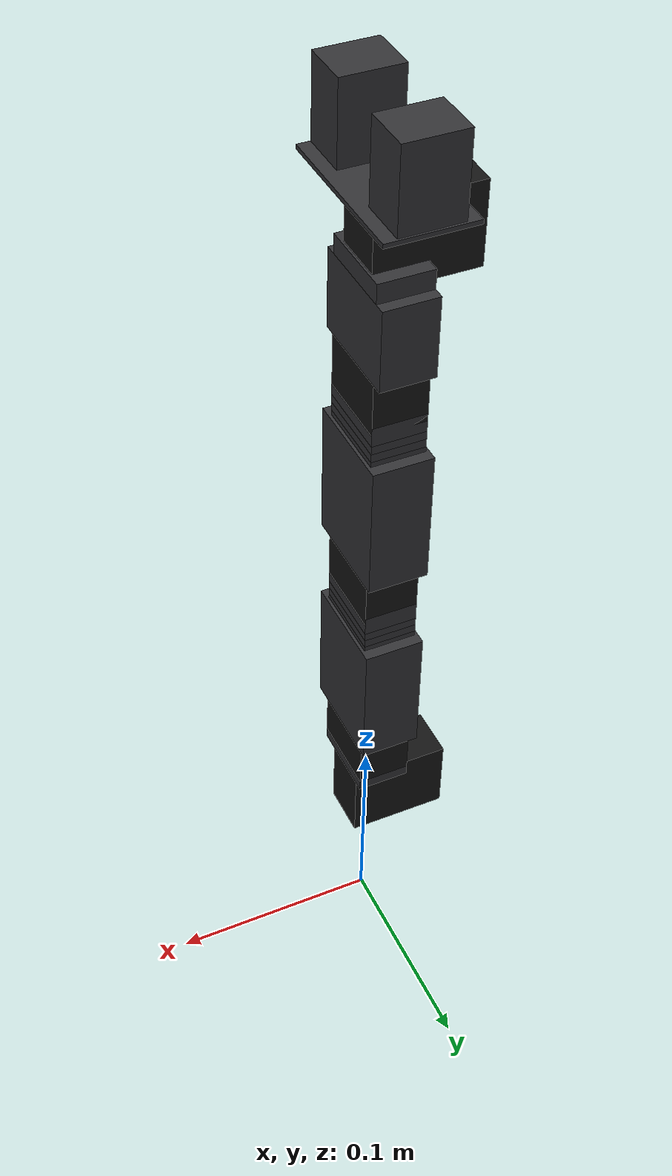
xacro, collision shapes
<?xml version="1.0"?>
<!-- Describe URDF for PhantomX Pincher Arm -->
<robot name="turtlebot_arm" xmlns:xacro="http://ros.org/wiki/xacro">

    <!-- We can configure joints velocity limit and lower/upper limits
          to allow access to different operational areas, e.g. left handed vs. right handed robot -->
    <xacro:property name="joints_vlimit" value="1.571"/>
    <xacro:property name="pan_llimit" value="-2.617"/>
    <xacro:property name="pan_ulimit" value="2.617"/>
    <xacro:property name="shoulder_llimit" value="-2.2"/>
    <xacro:property name="shoulder_ulimit" value="2.16"/>
    <xacro:property name="elbow_llimit" value="-2.42"/>
    <xacro:property name="elbow_ulimit" value="2.38"/>
    <xacro:property name="wrist_llimit" value="-1.72"/>
    <xacro:property name="wrist_ulimit" value="1.68"/>

    <!-- Included URDF Files -->

     <!-- Pincher arm is same as Turtlebot -->
    <xacro:include filename="$(find turtlebot_arm_description)/urdf_4gazebo/turtlebot_arm.xacro"/>

    <!-- As we don't have here a turtlebot base, add a world link as its location reference -->
    <link name="world"/>

<!-- copy start: Copied from https://github.com/corot/thorp/blob/master/thorp_description/urdf/thorp_gazebo.urdf.xacro -->

   <!-- Gazebo configuration for arm and cannon servos control -->
  <gazebo>
    <plugin name="gazebo_ros_control" filename="libgazebo_ros_control.so">
      <!-- namespace added because of the inmoov example (https://github.com/MatthewVerbryke/inmoov_ros) -->
      <robotNamespace>/turtlebot_arm</robotNamespace>
      <!-- from: https://groups.google.com/forum/#%21topic/moveit-users/zNRG50tHuuY -->
       <robotSimType>gazebo_ros_control/DefaultRobotHWSim</robotSimType>
    </plugin>
  </gazebo>

  <xacro:macro name="servo_transmission" params="name">
    <transmission name="${name}_trans">
      <type>transmission_interface/SimpleTransmission</type>
      <joint name="${name}_joint">
        <hardwareInterface>hardware_interface/PositionJointInterface</hardwareInterface>
      </joint>
      <actuator name="${name}_motor">
        <hardwareInterface>hardware_interface/PositionJointInterface</hardwareInterface>
        <mechanicalReduction>1</mechanicalReduction>
      </actuator>
    </transmission>
  </xacro:macro>

  <servo_transmission name="arm_shoulder_pan"/>
  <servo_transmission name="arm_shoulder_lift"/>
  <servo_transmission name="arm_elbow_flex"/>
  <servo_transmission name="arm_wrist_flex"/>
  <!-- copy end -->

    <!-- Turtlebot arm macro -->
    <turtlebot_arm parent="world" color="Gray" gripper_color="Gray"   pincher_gripper="true" turtlebot_gripper="false">
      <!-- Place the "floating" arm at the location according to the physical setup -->
      <origin xyz="0 0 0.083"/> <!-- height of the PhantomX Pincher base = ca. 58mm + height of table plane = ca. 25mm -->
    </turtlebot_arm>
</robot>

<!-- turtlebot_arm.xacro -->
<!-- Arm description for Turtlebot Arm and PhantomX Pincher arm -->
<robot xmlns:xacro="http://ros.org/wiki/xacro">
  <xacro:include filename="$(find turtlebot_arm_description)/urdf_4gazebo/arm_hardware.xacro"/>

  <material name="White">
    <color rgba="0.87 0.90 0.87 1.0"/>
  </material>
  <material name="Black">
    <color rgba="0.08 0.08 0.08 1.0"/>
  </material>
  <material name="Gray">
    <color rgba="0.2 0.2 0.21 1.0"/>
  </material>
  <material name="Green">
    <color rgba="0.22 0.32 0.14 1.0"/>
  </material>

  <xacro:macro name="turtlebot_arm" params="parent color pincher_gripper turtlebot_gripper gripper_color *origin">
    <link name="arm_base_link"/>
    <joint name="arm_base_joint" type="fixed">
      <xacro:insert_block name="origin"/>
      <parent link="${parent}"/>
      <child link="arm_base_link"/>
    </joint>

    <!-- fake gripper_link joint gives us a free servo!
         this makes us 5DOF and saves you $44.90
         that's a lot of coin! -->
    <link name="gripper_link"/>
    <joint name="gripper_link_joint" type="revolute">
      <origin xyz="0 0 0.112" rpy="0 -1.57 0"/>
      <parent link="arm_wrist_flex_link"/>
      <child link="gripper_link"/>
      <limit effort="30" velocity="1" lower="-3.14" upper="3.14"/>
      <axis xyz="1 0 0"/>
    </joint>

    <!-- shoulder pan joint -->
    <dynamixel_AX12_fixed parent="arm_base_link" name="arm_shoulder_pan_servo">
      <origin xyz="0 0 0" rpy="${M_PI/2} 0 ${M_PI/2}"/>
    </dynamixel_AX12_fixed>
    <bioloid_F3_revolute parent="arm_shoulder_pan_servo_link" name="arm_shoulder_pan" color="${color}"
                         vlimit="${joints_vlimit}" llimit="${pan_llimit}" ulimit="${pan_ulimit}">
      <origin xyz="0 ${AX12_WIDTH/2} 0" rpy="${-M_PI/2} ${M_PI/2} ${M_PI}"/>
    </bioloid_F3_revolute>

    <!-- shoulder lift joint -->
    <dynamixel_AX12_fixed parent="arm_shoulder_pan_link" name="arm_shoulder_lift_servo">
      <origin xyz="0 0 ${-AX12_HEIGHT-F10_HEIGHT+0.001}" rpy="0 ${M_PI} 0"/>
    </dynamixel_AX12_fixed>
    <bioloid_F4_revolute parent="arm_shoulder_lift_servo_link" name="arm_shoulder_lift" color="${color}"
                         vlimit="${joints_vlimit}" llimit="${shoulder_llimit}" ulimit="${shoulder_ulimit}">
      <origin xyz="0 0 0" rpy="0 0 0"/>
    </bioloid_F4_revolute>
    <bioloid_F10_fixed parent="arm_shoulder_lift_link" name="arm_shoulder_F10_0" color="${color}">
      <origin xyz="0 0 ${F4_HEIGHT+F10_HEIGHT/2}" rpy="0 0 0"/>
    </bioloid_F10_fixed>
    <bioloid_F10_fixed parent="arm_shoulder_F10_0_link" name="arm_shoulder_F10_1" color="${color}">
      <origin xyz="0 0 ${F10_HEIGHT}" rpy="0 0 0"/>
    </bioloid_F10_fixed>
    <bioloid_F10_fixed parent="arm_shoulder_F10_1_link" name="arm_shoulder_F10_2" color="${color}">
      <origin xyz="0 0 ${F10_HEIGHT}" rpy="0 0 0"/>
    </bioloid_F10_fixed>
    <bioloid_F3_fixed parent="arm_shoulder_F10_2_link" name="arm_shoulder_F3_0" color="${color}">
      <origin xyz="0 0 ${F10_HEIGHT/2}" rpy="0 ${M_PI} 0"/>
    </bioloid_F3_fixed>

    <!-- elbow joint -->
    <dynamixel_AX12_fixed parent="arm_shoulder_F3_0_link" name="arm_elbow_flex_servo">
      <origin xyz="0 0 ${-AX12_HEIGHT-F10_HEIGHT+0.001}" rpy="0 ${M_PI} 0"/>
    </dynamixel_AX12_fixed>
    <bioloid_F4_revolute parent="arm_elbow_flex_servo_link" name="arm_elbow_flex" color="${color}"
                         vlimit="${joints_vlimit}" llimit="${elbow_llimit}" ulimit="${elbow_ulimit}">
      <origin xyz="0 0 0" rpy="0 0 0"/>
    </bioloid_F4_revolute>
    <bioloid_F10_fixed parent="arm_elbow_flex_link" name="arm_elbow_F10_0" color="${color}">
      <origin xyz="0 0 ${F4_HEIGHT+F10_HEIGHT/2}" rpy="0 0 0"/>
    </bioloid_F10_fixed>
    <bioloid_F10_fixed parent="arm_elbow_F10_0_link" name="arm_elbow_F10_1" color="${color}">
      <origin xyz="0 0 ${F10_HEIGHT}" rpy="0 0 0"/>
    </bioloid_F10_fixed>
    <bioloid_F10_fixed parent="arm_elbow_F10_1_link" name="arm_elbow_F10_2" color="${color}">
      <origin xyz="0 0 ${F10_HEIGHT}" rpy="0 0 0"/>
    </bioloid_F10_fixed>
    <bioloid_F3_fixed parent="arm_elbow_F10_2_link" name="arm_elbow_F3_0" color="${color}">
      <origin xyz="0 0 ${F10_HEIGHT/2}" rpy="0 ${M_PI} 0"/>
    </bioloid_F3_fixed>

    <!-- wrist joint -->
    <dynamixel_AX12_fixed parent="arm_elbow_F3_0_link" name="arm_wrist_flex_servo">
      <origin xyz="0 0 ${-AX12_HEIGHT-F10_HEIGHT+0.001}" rpy="0 ${M_PI} 0"/>
    </dynamixel_AX12_fixed>
    <bioloid_F2_revolute parent="arm_wrist_flex_servo_link" name="arm_wrist_flex" color="${color}"
                         vlimit="${joints_vlimit}" llimit="${wrist_llimit}" ulimit="${wrist_ulimit}">
      <origin xyz="0 0 0" rpy="0 0 0"/>
    </bioloid_F2_revolute>

  <!-- gripper - Load either Turtlebot gripper or Pincher Gripper -->
  <xacro:if value="${pincher_gripper}">
    <xacro:include filename="$(find turtlebot_arm_description)/urdf_4gazebo/pincher_gripper.xacro"/>
  </xacro:if>
  <xacro:if value="${turtlebot_gripper}">
    <xacro:include filename="$(find turtlebot_arm_description)/urdf_4gazebo/turtlebot_gripper.xacro"/>
  </xacro:if>

  </xacro:macro>

</robot>

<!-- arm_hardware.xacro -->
<!-- Basic URDF components for Turtlebot Arm and PhantomX Pincher Arm-->
<robot xmlns:xacro="http://ros.org/wiki/xacro">
  <xacro:property name="M_PI" value="3.14159"/>
  <xacro:property name="M_SCALE" value="0.001"/>
  <xacro:property name="F10_HEIGHT" value="0.004"/>
  <xacro:property name="F4_HEIGHT" value="0.0525"/>
  <xacro:property name="F3_HEIGHT" value="0.009"/>
  <xacro:property name="AX12_HEIGHT" value="0.0385"/>
  <xacro:property name="AX12_WIDTH" value="0.038"/>
  <xacro:property name="AX12_LENGTH" value="0.050"/>
  <xacro:property name="F2_HEIGHT" value="0.0265"/>

  <!-- Calculates the inertial properties of a bounding box. From
       https://en.wikipedia.org/wiki/List_of_moments_of_inertia#List_of_3D_inertia_tensors-->
  <xacro:macro name="box_inertia" params="length width height mass">
    <inertial>
      <mass value="${mass}"/>
      <origin xyz="0 0 0"/>
      <inertia ixx="${mass/12*(height**2+length**2)}" ixy="0" ixz = "0"
               iyy="${mass/12*(width**2+length**2)}" iyz="0"
               izz="${mass/12*(width**2+height**2)}"/>
    </inertial>
  </xacro:macro>

  <xacro:macro name="arm_mount" params="parent name color *origin">
    <joint name="${name}_joint" type="fixed">
      <xacro:insert_block name="origin"/>
      <parent link="${parent}"/>
      <child link="${name}_link"/>
    </joint>

    <link name="${name}_link">
      <xacro:box_inertia length="0.074" width="0.074" height="0.004" mass="0.018"/>

      <visual>
        <origin xyz="-0.028 -0.0493 0.014" rpy="0.0 0.0 -${M_PI/2}"/>
        <geometry>
          <mesh filename="package://turtlebot_arm_description/meshes/mount.stl" scale="${M_SCALE} ${M_SCALE} ${M_SCALE}"/>
        </geometry>
        <material name="${color}"/>
      </visual>

      <collision>
        <origin xyz="-0.01 0.0 0.0165" rpy="0.0 0.0 0.0"/>
        <geometry>
          <box size="0.074 0.074 0.004"/>
        </geometry>
      </collision>
    </link>

    <gazebo reference="${name}_link">
      <material>Gazebo/${color}</material>
      <selfCollide>true</selfCollide>
      <gravity>true</gravity>
    </gazebo>
  </xacro:macro>

  <xacro:macro name="finger_fixed" params="parent name color *origin">
    <joint name="${name}_joint" type="fixed">
      <xacro:insert_block name="origin"/>
      <parent link="${parent}"/>
      <child link="${name}_link"/>
    </joint>

    <link name="${name}_link">
      <xacro:box_inertia length="0.0783" width="0.03801" height="0.0193" mass="0.015"/>

      <visual>
        <origin xyz=" 0 0 0 " rpy="0 0 0"/>
        <geometry>
          <mesh filename="package://turtlebot_arm_description/meshes/turtlebot_finger.stl" scale="${M_SCALE} ${M_SCALE} ${M_SCALE}"/>
        </geometry>
        <material name="${color}"/>
      </visual>

      <collision>
        <origin xyz="0.02645 0.0 -0.00655" rpy="0 0 0"/>
        <geometry>
          <box size="0.0783 0.03801 0.0193"/>
        </geometry>
      </collision>
    </link>

    <gazebo reference="${name}_link">
      <material>Gazebo/${color}</material>
      <selfCollide>true</selfCollide>
      <gravity>true</gravity>
    </gazebo>
  </xacro:macro>

  <xacro:macro name="dynamixel_AX12_fixed" params="parent name *origin">
    <joint name="${name}_joint" type="fixed">
      <xacro:insert_block name="origin"/>
      <parent link="${parent}"/>
      <child link="${name}_link"/>
    </joint>

    <link name="${name}_link">
      <inertial>
        <mass value="0.055"/>
        <origin xyz="0 0 0"/>
        <inertia ixx="0.000017012" ixy="0.0" ixz="0.0"
                 iyy="0.000013258" iyz="0.0"
                 izz="0.000009483"/>
      </inertial>

      <visual>
        <origin xyz=" 0 0 0 " rpy="0 0 0"/>
        <geometry>
          <mesh filename="package://turtlebot_arm_description/meshes/ax12_box.stl" scale="${M_SCALE} ${M_SCALE} ${M_SCALE}"/>
        </geometry>
        <material name="Black"/>
      </visual>

      <collision>
        <origin xyz="0.0 0.0 -0.01241" rpy="0 0 0"/>
        <geometry>
          <box size="0.025 0.038 0.04762"/>
        </geometry>
      </collision>
    </link>

    <gazebo reference="${name}_link">
      <material>Gazebo/Black</material>
      <selfCollide>true</selfCollide>
      <gravity>true</gravity>
    </gazebo>
  </xacro:macro>

  <xacro:macro name="bioloid_F10_fixed" params="parent name color *origin">
    <joint name="${name}_joint" type="fixed">
      <xacro:insert_block name="origin"/>
      <parent link="${parent}"/>
      <child link="${name}_link"/>
    </joint>

    <link name="${name}_link">
      <xacro:box_inertia length="0.025" width="0.038" height="0.004" mass="0.004"/>

      <visual>
        <origin xyz=" 0 0 0 " rpy="0 0 0"/>
        <geometry>
          <mesh filename="package://turtlebot_arm_description/meshes/F10.stl" scale="${M_SCALE} ${M_SCALE} ${M_SCALE}"/>
        </geometry>
        <material name="${color}"/>
      </visual>

      <collision>
        <origin xyz="0.0 0.0 0.0" rpy="0 0 0"/>
        <geometry>
          <box size="0.025 0.038 0.004"/>
        </geometry>
      </collision>
    </link>

    <gazebo reference="${name}_link">
      <material>Gazebo/${color}</material>
      <selfCollide>true</selfCollide>
      <gravity>true</gravity>
    </gazebo>
  </xacro:macro>

  <xacro:macro name="bioloid_F3_fixed" params="parent name color *origin">
    <joint name="${name}_joint" type="fixed">
      <xacro:insert_block name="origin"/>
      <parent link="${parent}"/>
      <child link="${name}_link"/>
    </joint>

    <link name="${name}_link">
      <xacro:box_inertia length="0.025" width="0.038" height="0.009" mass="0.005"/>

      <visual>
        <origin xyz=" 0 0 0 " rpy="0 0 0"/>
        <geometry>
          <mesh filename="package://turtlebot_arm_description/meshes/F3.stl" scale="${M_SCALE} ${M_SCALE} ${M_SCALE}"/>
        </geometry>
        <material name="${color}"/>
      </visual>

      <collision>
        <origin xyz="0.0 0.0 -0.0045" rpy="0 0 0"/>
        <geometry>
          <box size="0.025 0.038 0.009"/>
        </geometry>
      </collision>
    </link>

    <gazebo reference="${name}_link">
      <material>Gazebo/${color}</material>
      <selfCollide>true</selfCollide>
      <gravity>true</gravity>
    </gazebo>
  </xacro:macro>

  <xacro:macro name="bioloid_F3_revolute" params="parent name color llimit ulimit vlimit *origin">
    <joint name="${name}_joint" type="revolute">
      <xacro:insert_block name="origin"/>
      <axis xyz="0 0 -1"/>
      <limit effort="30" velocity="${vlimit}" lower="${llimit}" upper="${ulimit}"/>
      <dynamics friction="0.13"/>
      <parent link="${parent}"/>
      <child link="${name}_link"/>
    </joint>

    <link name="${name}_link">
      <xacro:box_inertia length="0.025" width="0.038" height="0.009" mass="0.008"/>

      <visual>
        <origin xyz=" 0 0 0 " rpy="0 0 0"/>
        <geometry>
          <mesh filename="package://turtlebot_arm_description/meshes/F3.stl" scale="${M_SCALE} ${M_SCALE} ${M_SCALE}"/>
        </geometry>
        <material name="${color}"/>
      </visual>

      <collision>
        <origin xyz="0.0 0.0 -0.0045" rpy="0 0 0"/>
        <geometry>
          <box size="0.025 0.038 0.009"/>
        </geometry>
      </collision>
    </link>

    <gazebo reference="${name}_link">
      <material>Gazebo/${color}</material>
      <selfCollide>true</selfCollide>
      <gravity>true</gravity>
    </gazebo>
  </xacro:macro>

  <xacro:macro name="bioloid_F2_revolute" params="parent name color llimit ulimit vlimit *origin">
    <joint name="${name}_joint" type="revolute">
      <xacro:insert_block name="origin"/>
      <axis xyz="0 1 0"/>
      <limit effort="30" velocity="${vlimit}" lower="${llimit}" upper="${ulimit}"/>
      <dynamics friction="0.13"/>
      <parent link="${parent}"/>
      <child link="${name}_link"/>
    </joint>

    <link name="${name}_link">
      <xacro:box_inertia length="0.025" width="0.0485" height="0.0375" mass="0.010"/>

      <visual>
        <origin xyz=" 0 0 0 " rpy="0 0 0"/>
        <geometry>
          <mesh filename="package://turtlebot_arm_description/meshes/F2.stl" scale="${M_SCALE} ${M_SCALE} ${M_SCALE}"/>
        </geometry>
        <material name="${color}"/>
      </visual>

      <collision>
        <origin xyz="0.0 0.0 0.00775" rpy="0 0 0"/>
        <geometry>
          <box size="0.025 0.0485 0.0375"/>
        </geometry>
      </collision>
    </link>

    <gazebo reference="${name}_link">
      <material>Gazebo/${color}</material>
      <selfCollide>true</selfCollide>
      <gravity>true</gravity>
    </gazebo>
  </xacro:macro>

  <xacro:macro name="bioloid_F4_revolute" params="parent name color llimit ulimit vlimit *origin">
    <joint name="${name}_joint" type="revolute">
      <xacro:insert_block name="origin"/>
      <axis xyz="0 1 0"/>
      <limit effort="30" velocity="${vlimit}" lower="${llimit}" upper="${ulimit}"/>
      <dynamics friction="0.13"/>
      <parent link="${parent}"/>
      <child link="${name}_link"/>
    </joint>

    <link name="${name}_link">
      <xacro:box_inertia length="0.028" width="0.0485" height="0.065" mass="0.016"/>

      <visual>
        <origin xyz=" 0 0 0 " rpy="0 0 0"/>
        <geometry>
          <mesh filename="package://turtlebot_arm_description/meshes/F4.stl" scale="${M_SCALE} ${M_SCALE} ${M_SCALE}"/>
        </geometry>
        <material name="${color}"/>
      </visual>

      <collision>
        <origin xyz="0.0 0.0 0.0215" rpy="0 0 0"/>
        <geometry>
          <box size="0.028 0.0485 0.065"/>
        </geometry>
      </collision>
    </link>

    <gazebo reference="${name}_link">
      <material>Gazebo/${color}</material>
      <selfCollide>true</selfCollide>
      <gravity>true</gravity>
    </gazebo>
  </xacro:macro>

  <xacro:macro name="gripper_finger_base" params="parent name color *origin">
    <joint name="${name}_joint" type="fixed">
      <xacro:insert_block name="origin"/>
      <parent link="${parent}"/>
      <child link="${name}_link"/>
    </joint>

    <link name="${name}_link">
      <xacro:box_inertia length="0.002" width="0.075" height="0.040" mass="0.00001"/>
      <visual>
         <origin xyz="0 0 0" rpy="0 0 0"/>
        <geometry>
           <box size="0.002 0.075 0.040"/>
        </geometry>
        <material name="${color}"/>
      </visual>

      <collision>
        <geometry>
          <box size="0.002 0.075 0.040"/>
        </geometry>
      </collision>
    </link >

    <gazebo reference="${name}_link">
      <material>Gazebo/${color}</material>
      <selfCollide>true</selfCollide>
      <gravity>true</gravity>
    </gazebo>

     <gazebo>
      <plugin name="p3d_base_controller" filename="libgazebo_ros_p3d.so">
        <alwaysOn>true</alwaysOn>
        <updateRate>5.0</updateRate>
        <bodyName>${name}_link</bodyName>
        <topicName>${name}_link_odom</topicName>
        <gaussianNoise>0.0</gaussianNoise>
        <frameName>world</frameName>
        <xyzOffsets>0 0 0</xyzOffsets>
        <rpyOffsets>0 0 0</rpyOffsets>
      </plugin>
    </gazebo>
  </xacro:macro>

    <xacro:macro name="pincher_gripper" params="name color *origin">
      <link name="${name}_link">
      <xacro:box_inertia length="0.036" width="0.028" height="0.004" mass="0.00001"/>
      <visual>
        <xacro:insert_block name="origin"/>
        <geometry>
          <mesh filename="package://turtlebot_arm_description/meshes/pincher_finger.stl" scale=".01 .01 .01"/>
        </geometry>
        <material name="${color}"/>
      </visual>
      <collision>
        <xacro:insert_block name="origin"/>
        <geometry>
          <box size="0.023 0.028 0.038"/>
        </geometry>
      </collision>
    </link>

    <gazebo reference="${name}_link">
      <material>Gazebo/${color}</material>
      <selfCollide>true</selfCollide>
      <gravity>true</gravity>
      <!-- contact sensor -->
      <sensor type="contact" name="${name}_link_contact_sensor">
        <update_rate>5.0</update_rate>
        <always_on>1</always_on>
        <contact>
          <collision>bumper_collision</collision>
          <topic>/${name}_link_contact</topic>
        </contact>
        <plugin name="gazebo_ros_bumper_controller" filename="libgazebo_ros_bumper.so">
          <alwaysOn>true</alwaysOn>
          <updateRate>5.0</updateRate>
          <bumperTopicName>/${name}_link_bumper</bumperTopicName>
          <frameName>world</frameName>
        </plugin>
      </sensor>
    </gazebo>

    <gazebo>
      <plugin name="p3d_base_controller" filename="libgazebo_ros_p3d.so">
        <alwaysOn>true</alwaysOn>
        <updateRate>5.0</updateRate>
        <bodyName>${name}_link</bodyName>
        <topicName>${name}_link_odom</topicName>
        <gaussianNoise>0.0</gaussianNoise>
        <frameName>world</frameName>
        <xyzOffsets>0 0 0</xyzOffsets>
        <rpyOffsets>0 0 0</rpyOffsets>
      </plugin>
    </gazebo>

  </xacro:macro>

</robot>

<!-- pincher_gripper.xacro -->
<!-- PhantomX Pincher Arm gripper URDF-->
<robot xmlns:xacro="http://ros.org/wiki/xacro">
  <xacro:property name="FINGER_HEIGHT" value="0.038"/>
    <bioloid_F3_fixed parent="arm_wrist_flex_link" name="arm_wrist_F3_0" color="${color}">
      <origin xyz="0 0 ${F2_HEIGHT}" rpy="0 ${M_PI} ${-M_PI}"/>
    </bioloid_F3_fixed>

    <!-- gripper joint -->
    <dynamixel_AX12_fixed parent="arm_wrist_F3_0_link" name="gripper_servo" >
      <origin xyz="0 0 ${-AX12_WIDTH/2}" rpy="${M_PI/2} ${M_PI} ${M_PI/2}"/>
    </dynamixel_AX12_fixed>

    <gripper_finger_base parent="gripper_servo_link" name="gripper_finger_base" color="${color}">
      <origin xyz="0 ${AX12_WIDTH/2} 0" rpy="${M_PI} 0 ${M_PI/2}"/>
    </gripper_finger_base>

     <!-- Master finger -->
    <!-- NOTE: The transmission for gripper_joint MUST specify a mechnaical reduction of two for
         the gripper seperation to be calculated correctly -->
    <joint name="gripper_joint" type="fixed">
      <origin xyz="${FINGER_HEIGHT/2} 0.015 0" rpy="0 0 0"/>
      <axis xyz="0 -1 0"/>
      <parent link="gripper_finger_base_link"/>
      <child link="gripper_active_link"/>
    </joint>

    <!-- macro defined in arm_hardware.xacro -->
    <pincher_gripper name="gripper_active" color="${color}" >
      <origin xyz="0 0.01 0" rpy="${M_PI/2} 0 ${M_PI/2}"/>
    </pincher_gripper>

    <!-- Slave finger -->
    <joint name="gripper2_joint" type="fixed">
      <origin xyz="${FINGER_HEIGHT/2} -0.0155 0" rpy="${M_PI} 0 0"/>
      <axis xyz="0 1 0"/>
      <parent link="gripper_finger_base_link"/>
      <child link="gripper_active2_link"/>
    </joint>

    <pincher_gripper name="gripper_active2" color="${color}" >
      <origin xyz="0 0.01 0" rpy="${M_PI/2} 0 ${M_PI/2}"/>
    </pincher_gripper>

    <!-- Using Mimic -->
    <!-- gripper 2 joint -->
</robot>
